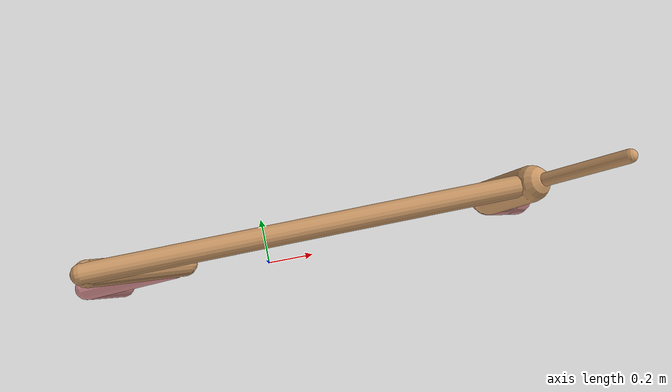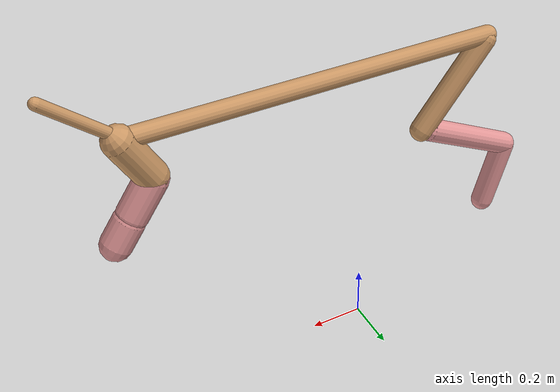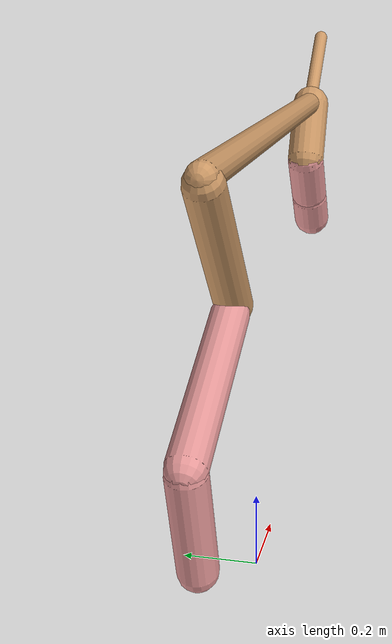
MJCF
<mujoco model="cheetah">
  <compiler angle="radian" coordinate="local" inertiafromgeom="true" settotalmass="14" />
  <default>
    <joint armature=".1" damping=".01" limited="true" solimplimit="0 .8 .03" solreflimit=".02 1" stiffness="8" />
    <geom conaffinity="0" condim="3" contype="1" friction="0.8 .1 .1" rgba="0.8 0.6 .4 1" solimp="0.0 0.8 0.01" solref="0.02 1" />
    <motor ctrllimited="true" ctrlrange="-1 1" />
  </default>
  <size nstack="300000" nuser_geom="1" />
  <option gravity="0 0 -9.81" timestep="0.01" />
  <worldbody>
    <body name="torso" pos="0.0 0.0 1.1329488871353293">
      <joint armature="0" axis="1 0 0" damping="0" limited="false" name="ignorex" pos="0 0 0" stiffness="0" type="slide" />
      <joint armature="0" axis="0 0 1" damping="0" limited="false" name="ignorez" pos="0 0 0" stiffness="0" type="slide" />
      <joint armature="0" axis="0 1 0" damping="0" limited="false" name="ignorey" pos="0 0 0" stiffness="0" type="hinge" />
      <geom fromto="-0.5 0.0 0.0 0.8831282984356383 0.0 0.0" name="torso" size="0.03401184193792921" type="capsule" />
      <geom axisangle="0 1 0 .87" name="head" pos="0.9831282984356383 0.0 0.1" size="0.020754855413153778 0.15" type="capsule" />

      <body name="bthigh" pos="-.5 0 0">
        <joint axis="0 1 0" damping="6" name="bthigh" pos="0 0 0" range="-.52 1.05" stiffness="240" type="hinge" />
        <geom axisangle="0 1 0 -3.8" name="bthigh" pos="0.13243743333112273 0.0 -0.17216866333045958" size="0.04332080271153782 0.19820134630052774" type="capsule" />
        <body name="bshin" pos="0.2248748666622455 0.0 -0.33433732666091914">
          <joint axis="0 1 0" damping="4.5" name="bshin" pos="0 0 0" range="-.785 .785" stiffness="180" type="hinge" />
          <geom axisangle="0 1 0 -2.03" name="bshin" pos="-0.18922558351275326 0.0 -0.09461279175637663" rgba="0.9 0.6 0.6 1" size="0.04332080271153782 0.20503587548330457" type="capsule" />
          <body name="bfoot" pos="-0.3784511670255065 0.0 -0.18922558351275326">
            <joint axis="0 1 0" damping="3" name="bfoot" pos="0 0 0" range="-.4 .785" stiffness="120" type="hinge" />
            <geom axisangle="0 1 0 -.27" name="bfoot" pos="0.04019049919135726 0.0 -0.1299492807187218" rgba="0.9 0.6 0.6 1" size="0.04332080271153782 0.1284891486362042" type="capsule" />
            <inertial mass="10" />
          </body>
        </body>
      </body>
      <body name="fthigh" pos="0.8831282984356383 0.0 0.0">
        <joint axis="0 1 0" damping="4.5" name="fthigh" pos="0 0 0" range="-1.5 0.8" stiffness="180" type="hinge" />
        <geom axisangle="0 1 0 .52" name="fthigh" pos="-0.04989554608158897 0.0 -0.0855352218541525" size="0.05653174125599308 0.0931" type="capsule" />
        <body name="fshin" pos="-0.09979109216317794 0.0 -0.171070443708305">
          <joint axis="0 1 0" damping="3" name="fshin" pos="0 0 0" range="-1.2 1.1" stiffness="120" type="hinge" />
          <geom axisangle="0 1 0 -.6" name="fshin" pos="0.046381400387749405 0.0 -0.06422040053688378" rgba="0.9 0.6 0.6 1" size="0.05653174125599308 0.07419999999999999" type="capsule" />
          <body name="ffoot" pos="0.09276280077549881 0.0 -0.12844080107376757">
            <joint axis="0 1 0" damping="1.5" name="ffoot" pos="0 0 0" range="-3.1 -0.3" stiffness="60" type="hinge" />
            <geom axisangle="0 1 0 -.6" name="ffoot" pos="0.033644090582416526 0.0 -0.05233525201709238" rgba="0.9 0.6 0.6 1" size="0.05653174125599308 0.049" type="capsule" />
            <inertial mass="10" />
          </body>
        </body>
      </body>
    </body>
  </worldbody>
  <actuator>
    <motor gear="120" joint="bthigh" name="bthigh" />
    <motor gear="90" joint="bshin" name="bshin" />
    <motor gear="60" joint="bfoot" name="bfoot" />
    <motor gear="120" joint="fthigh" name="fthigh" />
    <motor gear="60" joint="fshin" name="fshin" />
    <motor gear="30" joint="ffoot" name="ffoot" />
  </actuator>
</mujoco>
